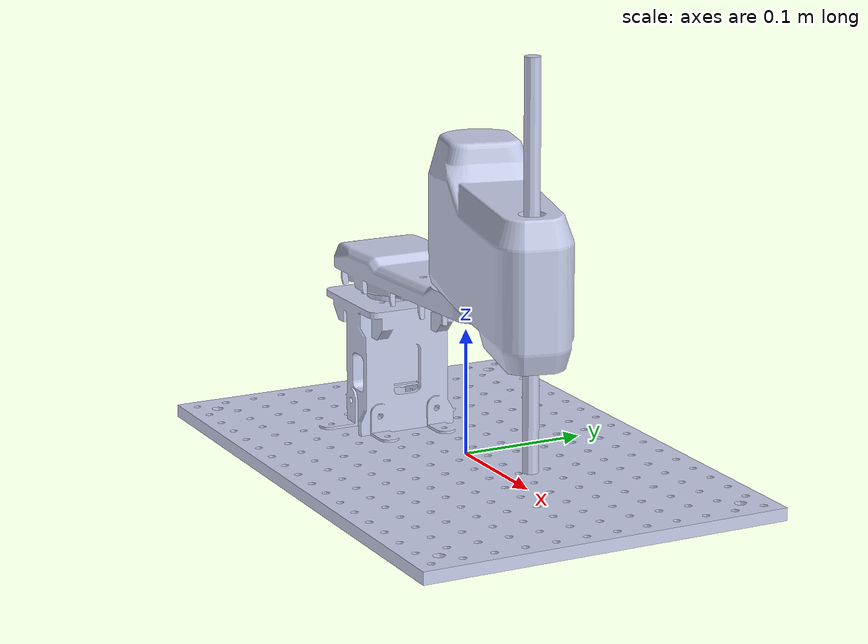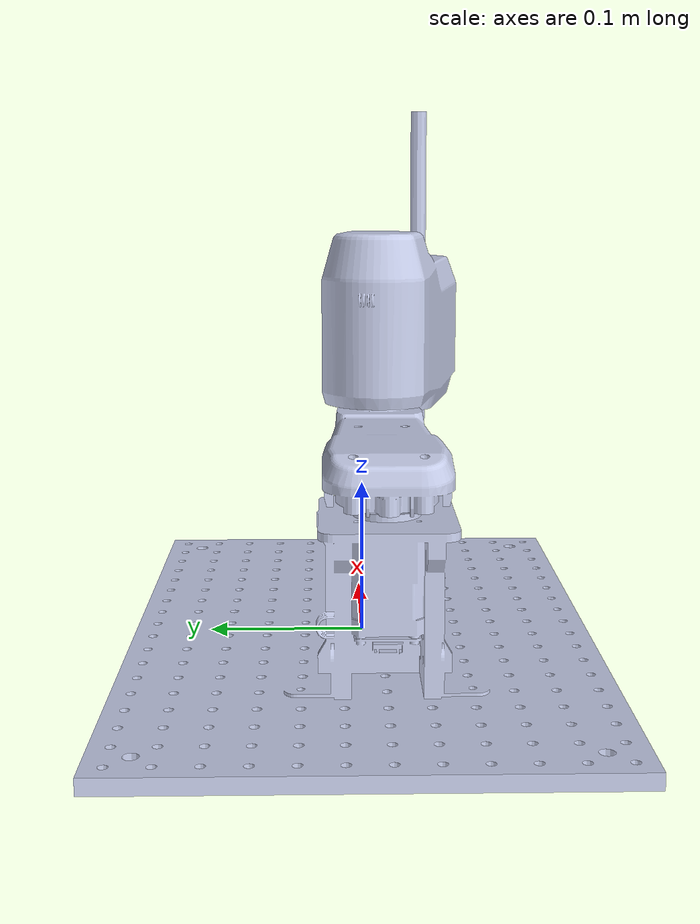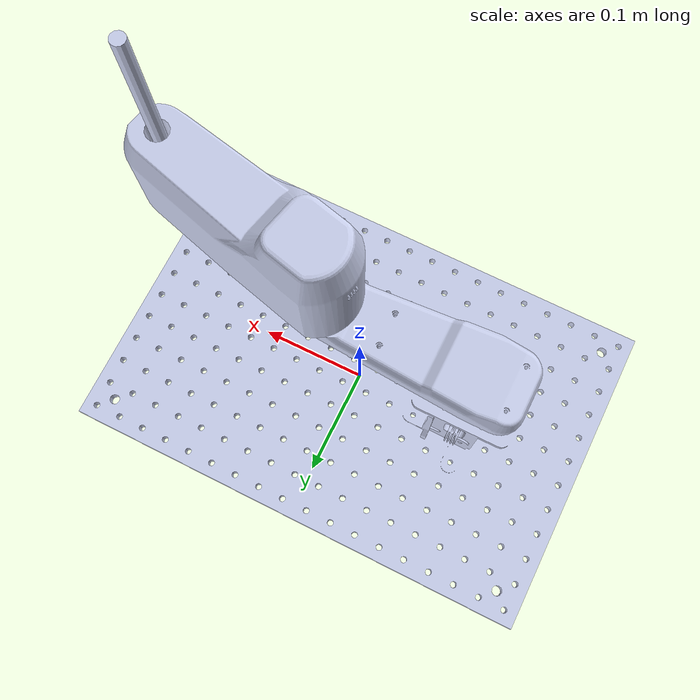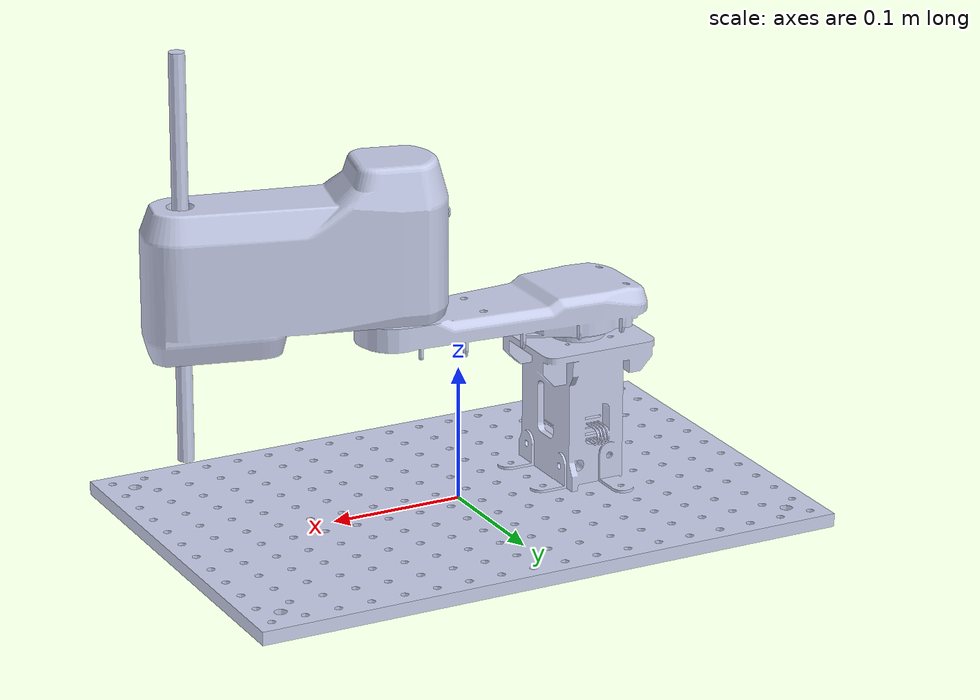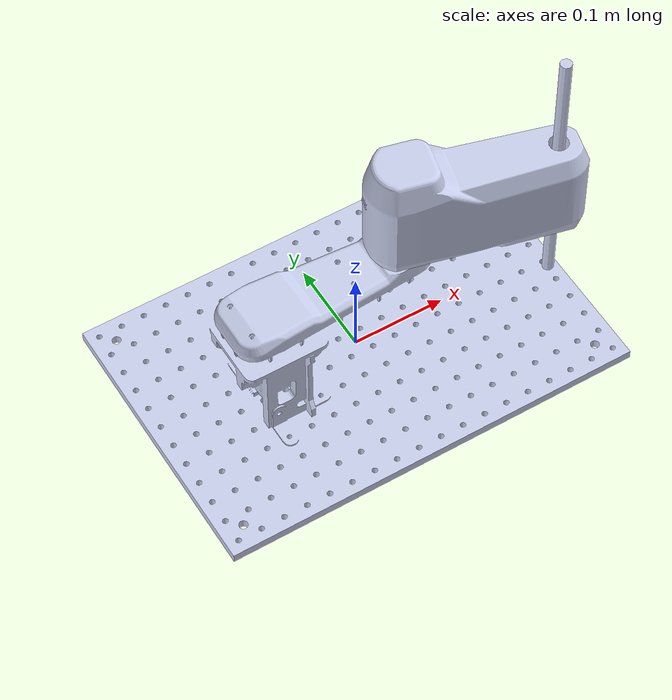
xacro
<?xml version="1.0"?>
<robot xmlns:xacro="http://www.ros.org/wiki/xacro" name="scara_robot">
    <xacro:arg name="initial_positions_file" default="initial_positions.yaml" />

    <!-- Import scara_robot urdf file -->
    <xacro:include filename="$(find scara_robot)/urdf/arm.xacro" />

    <!-- Import control_xacro -->
    <xacro:include filename="scara_robot.ros2_control.xacro" />

    <xacro:scara_robot_ros2_control name="FakeSystem" initial_positions_file="$(arg initial_positions_file)"/>

</robot>

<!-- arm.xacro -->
<robot xmlns:xacro="http://ros.org/wiki/xacro" name="scara_robot">

  <link
    name="base_link">
    <inertial>
      <origin
        xyz="-0.0182068229226992 -0.00224108902169128 0.00839717111867749"
        rpy="0 0 0" />
      <mass
        value="1.56967112802891" />
      <inertia
        ixx="0.00981515289956268"
        ixy="-5.16396798520178E-08"
        ixz="-9.39128884981169E-07"
        iyy="0.0218474833977536"
        iyz="1.91940286349884E-08"
        izz="0.0313868645586903" />
    </inertial>
    <visual>
      <origin
        xyz="0 0 0"
        rpy="0 0 0" />
      <geometry>
        <mesh
          filename="package://scara_robot/meshes/base_link.STL" />
      </geometry>
      <material
        name="">
        <color
          rgba="0.792156862745098 0.819607843137255 0.933333333333333 1" />
      </material>
    </visual>
    <collision>
      <origin
        xyz="0 0 0"
        rpy="0 0 0" />
      <geometry>
        <mesh
          filename="package://scara_robot/meshes/base_link.STL" />
      </geometry>
    </collision>
  </link>
  <link
    name="Link_1">
    <inertial>
      <origin
        xyz="0.0528461095279662 3.17496825746888E-07 0.023107187874849"
        rpy="0 0 0" />
      <mass
        value="0.152847842854459" />
      <inertia
        ixx="4.27724835792072E-05"
        ixy="-7.81562593945342E-10"
        ixz="2.48135001851774E-07"
        iyy="0.000475700613934616"
        iyz="2.84961727552641E-10"
        izz="0.000513414848546364" />
    </inertial>
    <visual>
      <origin
        xyz="0 0 0"
        rpy="0 0 0" />
      <geometry>
        <mesh
          filename="package://scara_robot/meshes/Link_1.STL" />
      </geometry>
      <material
        name="">
        <color
          rgba="0.792156862745098 0.819607843137255 0.933333333333333 1" />
      </material>
    </visual>
    <collision>
      <origin
        xyz="0 0 0"
        rpy="0 0 0" />
      <geometry>
        <mesh
          filename="package://scara_robot/meshes/Link_1.STL" />
      </geometry>
    </collision>
  </link>
  <joint
    name="Link_1_joint"
    type="revolute">
    <origin
      xyz="-0.1035 -0.0125 0.105"
      rpy="0 0 0" />
    <parent
      link="base_link" />
    <child
      link="Link_1" />
    <axis
      xyz="0 0 -1" />
    <limit
      lower="-1.5"
      upper="1.6"
      effort="0"
      velocity="0" />
  </joint>
  <link
    name="Link_2">
    <inertial>
      <origin
        xyz="0.0598805270940461 -0.0146042721623338 -0.0711411559517483"
        rpy="0 0 0" />
      <mass
        value="1.47227964130376" />
      <inertia
        ixx="0.00199982233860677"
        ixy="0.00104504069646782"
        ixz="0.00068058312023238"
        iyy="0.00602874210553773"
        iyz="-0.000166035123830792"
        izz="0.0054614442818752" />
    </inertial>
    <visual>
      <origin
        xyz="0 0 0"
        rpy="0 0 0" />
      <geometry>
        <mesh
          filename="package://scara_robot/meshes/Link_2.STL" />
      </geometry>
      <material
        name="">
        <color
          rgba="0.792156862745098 0.819607843137255 0.933333333333333 1" />
      </material>
    </visual>
    <collision>
      <origin
        xyz="0 0 0"
        rpy="0 0 0" />
      <geometry>
        <mesh
          filename="package://scara_robot/meshes/Link_2.STL" />
      </geometry>
    </collision>
  </link>
  <joint
    name="Link_2_joint"
    type="revolute">
    <origin
      xyz="0.14912 0.00021473 0.1565"
      rpy="0 0 0" />
    <parent
      link="Link_1" />
    <child
      link="Link_2" />
    <axis
      xyz="0 0 1" />
    <limit
      lower="-2.3"
      upper="2.7"
      effort="0"
      velocity="0" />
  </joint>
  <link
    name="Link_ee">
    <inertial>
      <origin
        xyz="-2.22044604925031E-16 2.77555756156289E-17 0.0413693372727322"
        rpy="0 0 0" />
      <mass
        value="0.0339292006587698" />
      <inertia
        ixx="0.000254774367746702"
        ixy="-7.2378303596791E-24"
        ixz="-2.05812937658863E-19"
        iyy="0.000254774367746702"
        iyz="1.00438671409038E-19"
        izz="6.10725611857856E-07" />
    </inertial>
    <visual>
      <origin
        xyz="0 0 0"
        rpy="0 0 0" />
      <geometry>
        <mesh
          filename="package://scara_robot/meshes/Link_ee.STL" />
      </geometry>
      <material
        name="">
        <color
          rgba="0.792156862745098 0.819607843137255 0.933333333333333 1" />
      </material>
    </visual>
    <collision>
      <origin
        xyz="0 0 0"
        rpy="0 0 0" />
      <geometry>
        <mesh
          filename="package://scara_robot/meshes/Link_ee.STL" />
      </geometry>
    </collision>
  </link>
  <joint
    name="ee_joint"
    type="prismatic">
    <origin
      xyz="0.14661 -0.035766 -0.105"
      rpy="0 0 0" />
    <parent
      link="Link_2" />
    <child
      link="Link_ee" />
    <axis
      xyz="0 0 -1" />
    <limit
      lower="-0.045"
      upper="0.065"
      effort="0"
      velocity="0" />
  </joint>
</robot>
